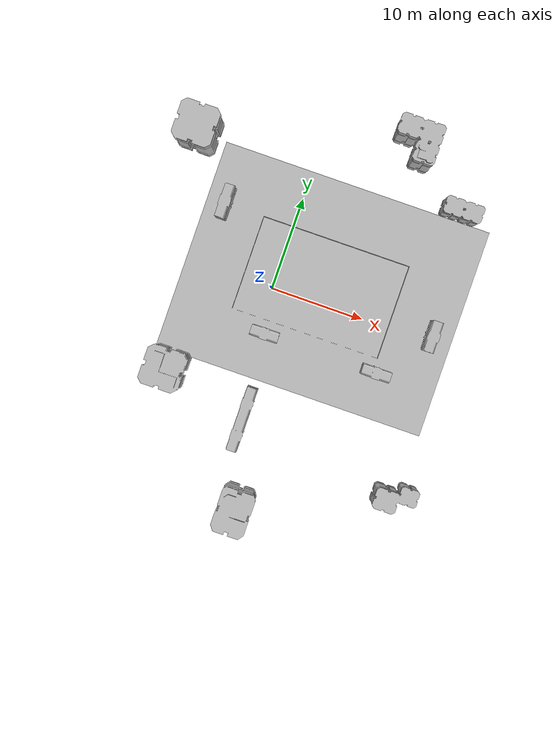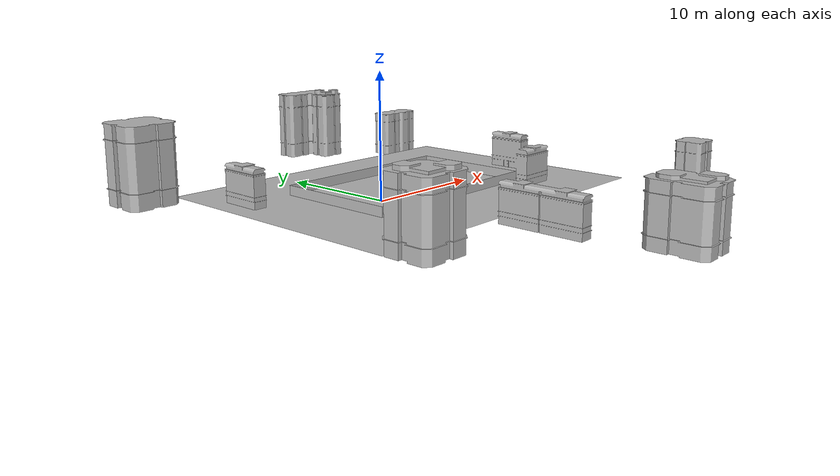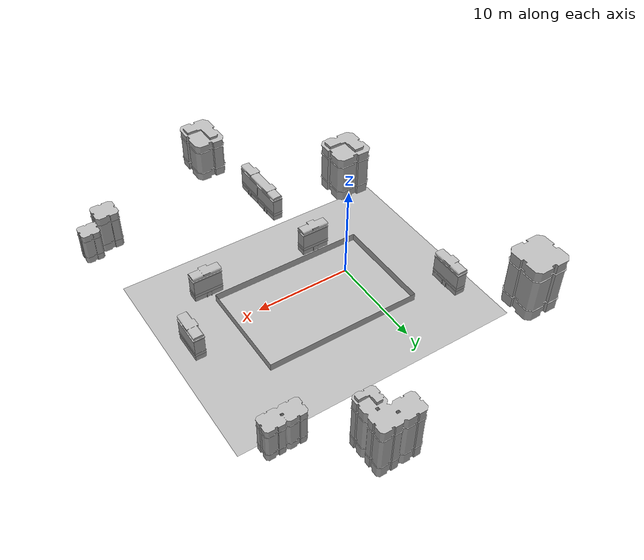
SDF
<?xml version='1.0' encoding='utf-8'?>
<sdf version="1.4">
<model name="template_model">
<link name="track">
<collision name="collision">
<pose>0 0 0 0 0 0</pose>
<geometry>
<mesh>
<uri>model://meshes/2022_summit_speedway_custom/2022_summit_speedway_custom_collision.dae</uri>
</mesh>
</geometry>
</collision>
<visual name="visual">
<pose>0 0 0 0 0 0</pose>
<geometry>
<mesh>
<uri>model://meshes/2022_summit_speedway_custom/2022_summit_speedway_custom.dae</uri>
</mesh>
</geometry>
</visual>
</link>
<link name="vegas_building_01">
<visual name="visual">
<pose>1 6 0 0 0 0</pose>
<geometry>
<mesh>
<uri>model://meshes/Vegas_track/Re_Invent_track_building_city_01.dae</uri>
</mesh>
</geometry>
</visual>
</link>
<link name="vegas_building_02">
<visual name="visual">
<pose>15 0 0 0 0 3.14</pose>
<geometry>
<mesh>
<uri>model://meshes/Vegas_track/Re_Invent_track_building_city_02.dae</uri>
</mesh>
</geometry>
</visual>
</link>
<static>1</static>
</model>
</sdf>
